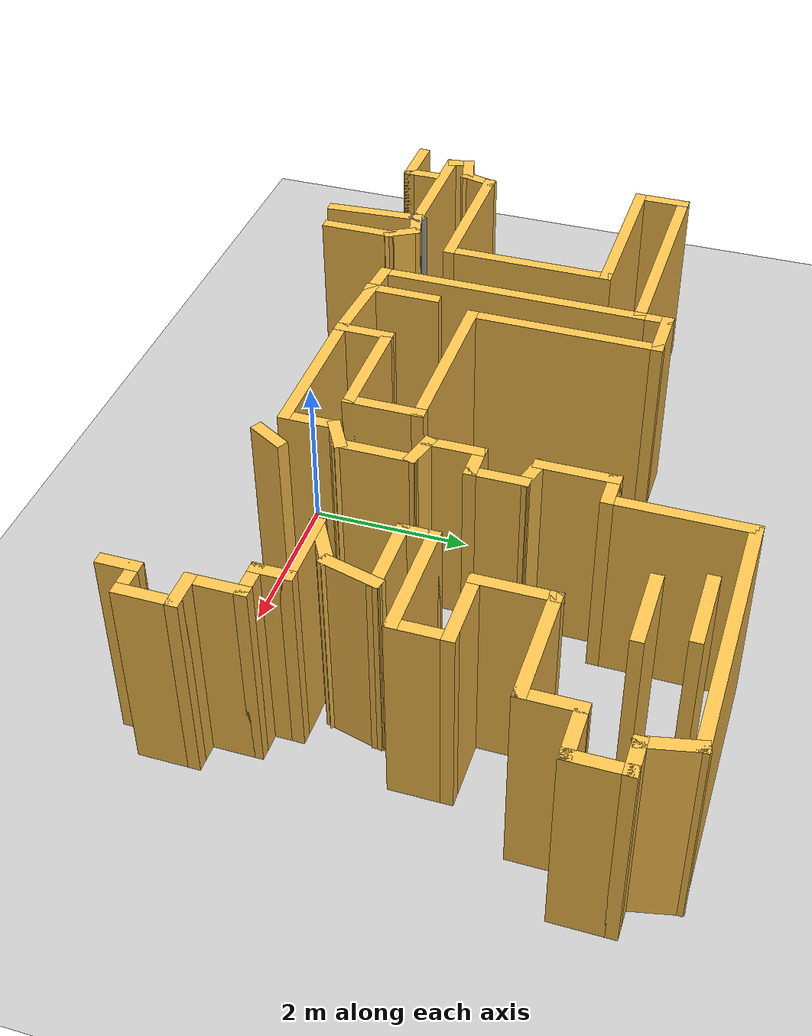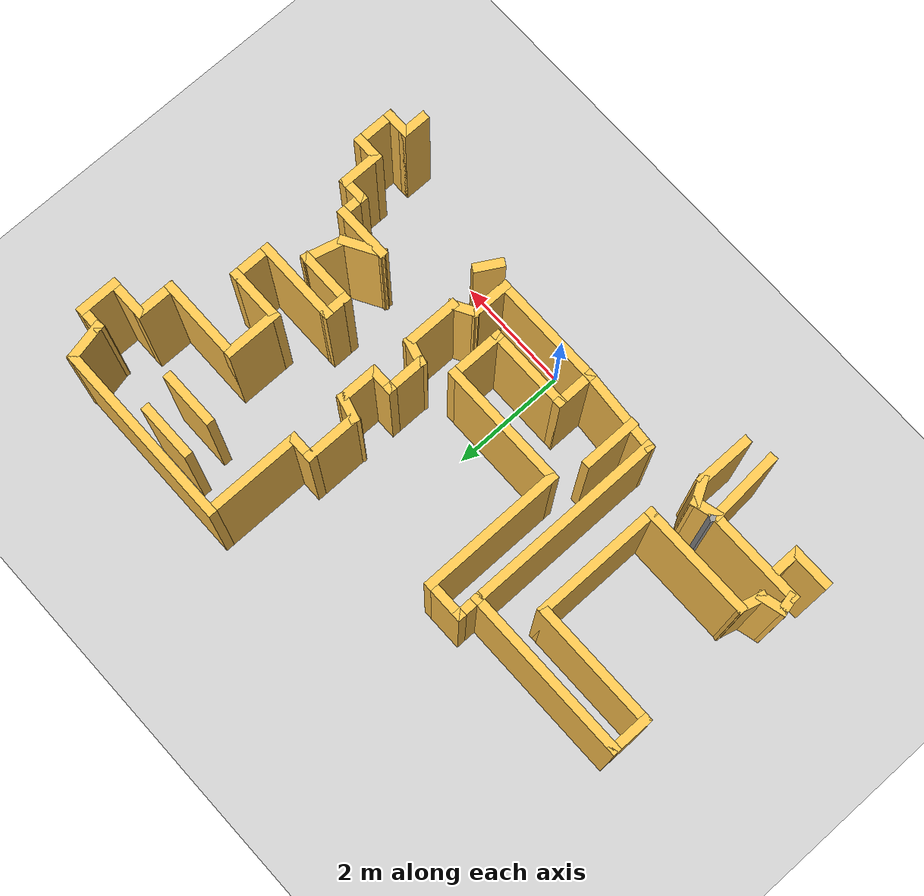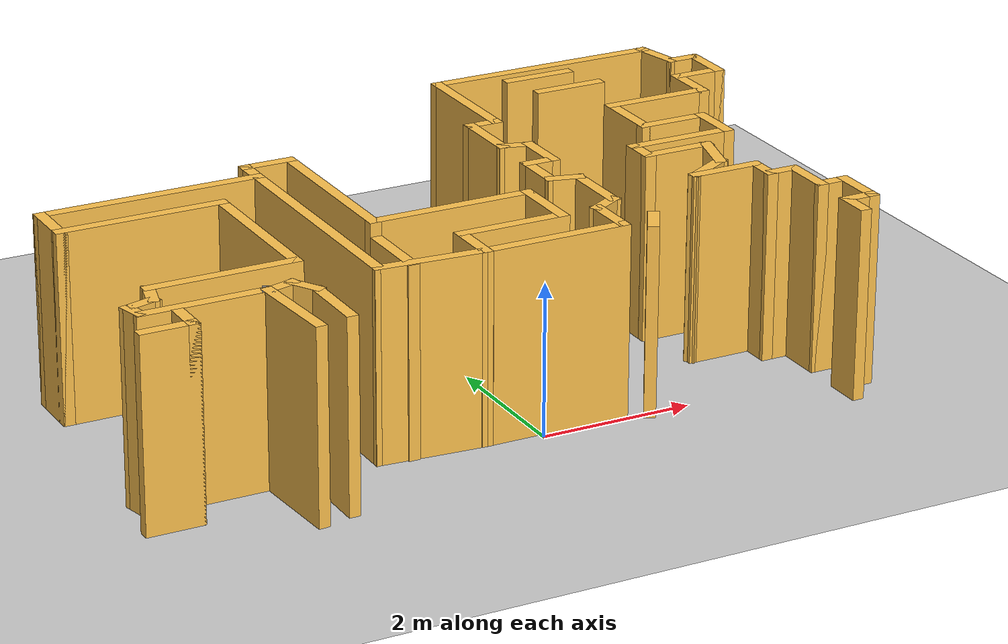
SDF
<sdf version="1.6">
 <world name="default">
  <model name="ground_plane">
   <static>1</static>
   <link name="link">
    <collision name="collision">
     <geometry><plane><normal>0 0 1</normal><size>100 100</size></plane></geometry>
     <surface>
      <contact><collide_bitmask>65535</collide_bitmask></contact>
      <friction><ode><mu>100</mu><mu2>50</mu2></ode></friction>
     </surface>
    </collision>
    <visual name="visual">
     <cast_shadows>0</cast_shadows>
     <geometry><plane><normal>0 0 1</normal><size>100 100</size></plane></geometry>
     <material>
      <script><uri>file://media/materials/scripts/gazebo.material</uri><name>Gazebo/Grey</name></script>
     </material>
    </visual>
   </link>
  </model>
  <model name="map_21">
   <pose>-0.097763 -0.060898 0 0 -0 0</pose>
   <link name="Wall_0">
    <collision name="Wall_0_Collision">
     <geometry><box><size>3.25 0.15 2.5</size></box></geometry>
     <pose>0 0 1.25 0 -0 0</pose>
    </collision>
    <visual name="Wall_0_Visual">
     <pose>0 0 1.25 0 -0 0</pose>
     <geometry><box><size>3.25 0.15 2.5</size></box></geometry>
     <material>
      <script><uri>file://media/materials/scripts/gazebo.material</uri><name>Gazebo/Grey</name></script>
      <ambient>1 0.764706 0.305882 1</ambient>
     </material>
     <meta><layer>0</layer></meta>
    </visual>
    <pose>3.10195 5.67023 0 0 -0 3.14159</pose>
   </link>
   <link name="Wall_1">
    <collision name="Wall_1_Collision">
     <geometry><box><size>1.75 0.15 2.5</size></box></geometry>
     <pose>0 0 1.25 0 -0 0</pose>
    </collision>
    <visual name="Wall_1_Visual">
     <pose>0 0 1.25 0 -0 0</pose>
     <geometry><box><size>1.75 0.15 2.5</size></box></geometry>
     <material>
      <script><uri>file://media/materials/scripts/gazebo.material</uri><name>Gazebo/Grey</name></script>
      <ambient>1 0.764706 0.305882 1</ambient>
     </material>
     <meta><layer>0</layer></meta>
    </visual>
    <pose>1.55195 4.87023 0 0 -0 -1.5708</pose>
   </link>
   <link name="Wall_10">
    <collision name="Wall_10_Collision">
     <geometry><box><size>0.5 0.15 2.5</size></box></geometry>
     <pose>0 0 1.25 0 -0 0</pose>
    </collision>
    <visual name="Wall_10_Visual">
     <pose>0 0 1.25 0 -0 0</pose>
     <geometry><box><size>0.5 0.15 2.5</size></box></geometry>
     <material>
      <script><uri>file://media/materials/scripts/gazebo.material</uri><name>Gazebo/Grey</name></script>
      <ambient>1 0.764706 0.305882 1</ambient>
     </material>
     <meta><layer>0</layer></meta>
    </visual>
    <pose>1.37654 0.901556 0 0 -0 -2.61799</pose>
   </link>
   <link name="Wall_11">
    <collision name="Wall_11_Collision">
     <geometry><box><size>0.75 0.15 2.5</size></box></geometry>
     <pose>0 0 1.25 0 -0 0</pose>
    </collision>
    <visual name="Wall_11_Visual">
     <pose>0 0 1.25 0 -0 0</pose>
     <geometry><box><size>0.75 0.15 2.5</size></box></geometry>
     <material>
      <script><uri>file://media/materials/scripts/gazebo.material</uri><name>Gazebo/Grey</name></script>
      <ambient>1 0.764706 0.305882 1</ambient>
     </material>
     <meta><layer>0</layer></meta>
    </visual>
    <pose>1.22499 0.514056 0 0 -0 -1.5708</pose>
   </link>
   <link name="Wall_12">
    <collision name="Wall_12_Collision">
     <geometry><box><size>2 0.15 2.5</size></box></geometry>
     <pose>0 0 1.25 0 -0 0</pose>
    </collision>
    <visual name="Wall_12_Visual">
     <pose>0 0 1.25 0 -0 0</pose>
     <geometry><box><size>2 0.15 2.5</size></box></geometry>
     <material>
      <script><uri>file://media/materials/scripts/gazebo.material</uri><name>Gazebo/Grey</name></script>
      <ambient>1 0.764706 0.305882 1</ambient>
     </material>
     <meta><layer>0</layer></meta>
    </visual>
    <pose>0.299987 0.214056 0 0 -0 3.14159</pose>
   </link>
   <link name="Wall_122">
    <collision name="Wall_122_Collision">
     <geometry><box><size>0.5 0.15 2.5</size></box></geometry>
     <pose>0 0 1.25 0 -0 0</pose>
    </collision>
    <visual name="Wall_122_Visual">
     <pose>0 0 1.25 0 -0 0</pose>
     <geometry><box><size>0.5 0.15 2.5</size></box></geometry>
     <material>
      <script><uri>file://media/materials/scripts/gazebo.material</uri><name>Gazebo/Grey</name></script>
      <ambient>1 0.764706 0.305882 1</ambient>
     </material>
     <meta><layer>0</layer></meta>
    </visual>
    <pose>4.04776 -0.496496 0 0 -0 1.5708</pose>
   </link>
   <link name="Wall_123">
    <collision name="Wall_123_Collision">
     <geometry><box><size>0.5 0.15 2.5</size></box></geometry>
     <pose>0 0 1.25 0 -0 0</pose>
    </collision>
    <visual name="Wall_123_Visual">
     <pose>0 0 1.25 0 -0 0</pose>
     <geometry><box><size>0.5 0.15 2.5</size></box></geometry>
     <material>
      <script><uri>file://media/materials/scripts/gazebo.material</uri><name>Gazebo/Grey</name></script>
      <ambient>1 0.764706 0.305882 1</ambient>
     </material>
     <meta><layer>0</layer></meta>
    </visual>
    <pose>4.22276 -0.321496 0 0 -0 0</pose>
   </link>
   <link name="Wall_124">
    <collision name="Wall_124_Collision">
     <geometry><box><size>0.75 0.15 2.5</size></box></geometry>
     <pose>0 0 1.25 0 -0 0</pose>
    </collision>
    <visual name="Wall_124_Visual">
     <pose>0 0 1.25 0 -0 0</pose>
     <geometry><box><size>0.75 0.15 2.5</size></box></geometry>
     <material>
      <script><uri>file://media/materials/scripts/gazebo.material</uri><name>Gazebo/Grey</name></script>
      <ambient>1 0.764706 0.305882 1</ambient>
     </material>
     <meta><layer>0</layer></meta>
    </visual>
    <pose>4.39776 -0.021496 0 0 -0 1.5708</pose>
   </link>
   <link name="Wall_125">
    <collision name="Wall_125_Collision">
     <geometry><box><size>0.5 0.15 2.5</size></box></geometry>
     <pose>0 0 1.25 0 -0 0</pose>
    </collision>
    <visual name="Wall_125_Visual">
     <pose>0 0 1.25 0 -0 0</pose>
     <geometry><box><size>0.5 0.15 2.5</size></box></geometry>
     <material>
      <script><uri>file://media/materials/scripts/gazebo.material</uri><name>Gazebo/Grey</name></script>
      <ambient>1 0.764706 0.305882 1</ambient>
     </material>
     <meta><layer>0</layer></meta>
    </visual>
    <pose>4.22276 0.278504 0 0 -0 3.14159</pose>
   </link>
   <link name="Wall_126">
    <collision name="Wall_126_Collision">
     <geometry><box><size>0.75 0.15 2.5</size></box></geometry>
     <pose>0 0 1.25 0 -0 0</pose>
    </collision>
    <visual name="Wall_126_Visual">
     <pose>0 0 1.25 0 -0 0</pose>
     <geometry><box><size>0.75 0.15 2.5</size></box></geometry>
     <material>
      <script><uri>file://media/materials/scripts/gazebo.material</uri><name>Gazebo/Grey</name></script>
      <ambient>1 0.764706 0.305882 1</ambient>
     </material>
     <meta><layer>0</layer></meta>
    </visual>
    <pose>4.04776 0.578504 0 0 -0 1.5708</pose>
   </link>
   <link name="Wall_127">
    <collision name="Wall_127_Collision">
     <geometry><box><size>0.5 0.15 2.5</size></box></geometry>
     <pose>0 0 1.25 0 -0 0</pose>
    </collision>
    <visual name="Wall_127_Visual">
     <pose>0 0 1.25 0 -0 0</pose>
     <geometry><box><size>0.5 0.15 2.5</size></box></geometry>
     <material>
      <script><uri>file://media/materials/scripts/gazebo.material</uri><name>Gazebo/Grey</name></script>
      <ambient>1 0.764706 0.305882 1</ambient>
     </material>
     <meta><layer>0</layer></meta>
    </visual>
    <pose>3.87276 0.878504 0 0 -0 3.14159</pose>
   </link>
   <link name="Wall_128">
    <collision name="Wall_128_Collision">
     <geometry><box><size>0.5 0.15 2.5</size></box></geometry>
     <pose>0 0 1.25 0 -0 0</pose>
    </collision>
    <visual name="Wall_128_Visual">
     <pose>0 0 1.25 0 -0 0</pose>
     <geometry><box><size>0.5 0.15 2.5</size></box></geometry>
     <material>
      <script><uri>file://media/materials/scripts/gazebo.material</uri><name>Gazebo/Grey</name></script>
      <ambient>1 0.764706 0.305882 1</ambient>
     </material>
     <meta><layer>0</layer></meta>
    </visual>
    <pose>3.69776 1.0535 0 0 -0 1.5708</pose>
   </link>
   <link name="Wall_129">
    <collision name="Wall_129_Collision">
     <geometry><box><size>1 0.15 2.5</size></box></geometry>
     <pose>0 0 1.25 0 -0 0</pose>
    </collision>
    <visual name="Wall_129_Visual">
     <pose>0 0 1.25 0 -0 0</pose>
     <geometry><box><size>1 0.15 2.5</size></box></geometry>
     <material>
      <script><uri>file://media/materials/scripts/gazebo.material</uri><name>Gazebo/Grey</name></script>
      <ambient>1 0.764706 0.305882 1</ambient>
     </material>
     <meta><layer>0</layer></meta>
    </visual>
    <pose>3.27276 1.2285 0 0 -0 3.14159</pose>
   </link>
   <link name="Wall_13">
    <collision name="Wall_13_Collision">
     <geometry><box><size>0.75 0.15 2.5</size></box></geometry>
     <pose>0 0 1.25 0 -0 0</pose>
    </collision>
    <visual name="Wall_13_Visual">
     <pose>0 0 1.25 0 -0 0</pose>
     <geometry><box><size>0.75 0.15 2.5</size></box></geometry>
     <material>
      <script><uri>file://media/materials/scripts/gazebo.material</uri><name>Gazebo/Grey</name></script>
      <ambient>1 0.764706 0.305882 1</ambient>
     </material>
     <meta><layer>0</layer></meta>
    </visual>
    <pose>-0.625014 0.514056 0 0 -0 1.5708</pose>
   </link>
   <link name="Wall_130">
    <collision name="Wall_130_Collision">
     <geometry><box><size>0.75 0.15 2.5</size></box></geometry>
     <pose>0 0 1.25 0 -0 0</pose>
    </collision>
    <visual name="Wall_130_Visual">
     <pose>0 0 1.25 0 -0 0</pose>
     <geometry><box><size>0.75 0.15 2.5</size></box></geometry>
     <material>
      <script><uri>file://media/materials/scripts/gazebo.material</uri><name>Gazebo/Grey</name></script>
      <ambient>1 0.764706 0.305882 1</ambient>
     </material>
     <meta><layer>0</layer></meta>
    </visual>
    <pose>3.10757 1.3785 0 0 -0 0.523599</pose>
   </link>
   <link name="Wall_131">
    <collision name="Wall_131_Collision">
     <geometry><box><size>0.75 0.15 2.5</size></box></geometry>
     <pose>0 0 1.25 0 -0 0</pose>
    </collision>
    <visual name="Wall_131_Visual">
     <pose>0 0 1.25 0 -0 0</pose>
     <geometry><box><size>0.75 0.15 2.5</size></box></geometry>
     <material>
      <script><uri>file://media/materials/scripts/gazebo.material</uri><name>Gazebo/Grey</name></script>
      <ambient>1 0.764706 0.305882 1</ambient>
     </material>
     <meta><layer>0</layer></meta>
    </visual>
    <pose>3.44502 1.81828 0 0 -0 1.309</pose>
   </link>
   <link name="Wall_132">
    <collision name="Wall_132_Collision">
     <geometry><box><size>1 0.15 2.5</size></box></geometry>
     <pose>0 0 1.25 0 -0 0</pose>
    </collision>
    <visual name="Wall_132_Visual">
     <pose>0 0 1.25 0 -0 0</pose>
     <geometry><box><size>1 0.15 2.5</size></box></geometry>
     <material>
      <script><uri>file://media/materials/scripts/gazebo.material</uri><name>Gazebo/Grey</name></script>
      <ambient>1 0.764706 0.305882 1</ambient>
     </material>
     <meta><layer>0</layer></meta>
    </visual>
    <pose>3.09767 2.10806 0 0 -0 3.14159</pose>
   </link>
   <link name="Wall_133">
    <collision name="Wall_133_Collision">
     <geometry><box><size>0.5 0.15 2.5</size></box></geometry>
     <pose>0 0 1.25 0 -0 0</pose>
    </collision>
    <visual name="Wall_133_Visual">
     <pose>0 0 1.25 0 -0 0</pose>
     <geometry><box><size>0.5 0.15 2.5</size></box></geometry>
     <material>
      <script><uri>file://media/materials/scripts/gazebo.material</uri><name>Gazebo/Grey</name></script>
      <ambient>1 0.764706 0.305882 1</ambient>
     </material>
     <meta><layer>0</layer></meta>
    </visual>
    <pose>2.67267 2.28306 0 0 -0 1.5708</pose>
   </link>
   <link name="Wall_134">
    <collision name="Wall_134_Collision">
     <geometry><box><size>1.5 0.15 2.5</size></box></geometry>
     <pose>0 0 1.25 0 -0 0</pose>
    </collision>
    <visual name="Wall_134_Visual">
     <pose>0 0 1.25 0 -0 0</pose>
     <geometry><box><size>1.5 0.15 2.5</size></box></geometry>
     <material>
      <script><uri>file://media/materials/scripts/gazebo.material</uri><name>Gazebo/Grey</name></script>
      <ambient>1 0.764706 0.305882 1</ambient>
     </material>
     <meta><layer>0</layer></meta>
    </visual>
    <pose>3.34767 2.45806 0 0 -0 0</pose>
   </link>
   <link name="Wall_135">
    <collision name="Wall_135_Collision">
     <geometry><box><size>0.75 0.15 2.5</size></box></geometry>
     <pose>0 0 1.25 0 -0 0</pose>
    </collision>
    <visual name="Wall_135_Visual">
     <pose>0 0 1.25 0 -0 0</pose>
     <geometry><box><size>0.75 0.15 2.5</size></box></geometry>
     <material>
      <script><uri>file://media/materials/scripts/gazebo.material</uri><name>Gazebo/Grey</name></script>
      <ambient>1 0.764706 0.305882 1</ambient>
     </material>
     <meta><layer>0</layer></meta>
    </visual>
    <pose>4.02267 2.75806 0 0 -0 1.5708</pose>
   </link>
   <link name="Wall_136">
    <collision name="Wall_136_Collision">
     <geometry><box><size>1 0.15 2.5</size></box></geometry>
     <pose>0 0 1.25 0 -0 0</pose>
    </collision>
    <visual name="Wall_136_Visual">
     <pose>0 0 1.25 0 -0 0</pose>
     <geometry><box><size>1 0.15 2.5</size></box></geometry>
     <material>
      <script><uri>file://media/materials/scripts/gazebo.material</uri><name>Gazebo/Grey</name></script>
      <ambient>1 0.764706 0.305882 1</ambient>
     </material>
     <meta><layer>0</layer></meta>
    </visual>
    <pose>3.59767 3.05806 0 0 -0 3.14159</pose>
   </link>
   <link name="Wall_137">
    <collision name="Wall_137_Collision">
     <geometry><box><size>1 0.15 2.5</size></box></geometry>
     <pose>0 0 1.25 0 -0 0</pose>
    </collision>
    <visual name="Wall_137_Visual">
     <pose>0 0 1.25 0 -0 0</pose>
     <geometry><box><size>1 0.15 2.5</size></box></geometry>
     <material>
      <script><uri>file://media/materials/scripts/gazebo.material</uri><name>Gazebo/Grey</name></script>
      <ambient>1 0.764706 0.305882 1</ambient>
     </material>
     <meta><layer>0</layer></meta>
    </visual>
    <pose>3.17267 3.48306 0 0 -0 1.5708</pose>
   </link>
   <link name="Wall_138">
    <collision name="Wall_138_Collision">
     <geometry><box><size>1.5 0.15 2.5</size></box></geometry>
     <pose>0 0 1.25 0 -0 0</pose>
    </collision>
    <visual name="Wall_138_Visual">
     <pose>0 0 1.25 0 -0 0</pose>
     <geometry><box><size>1.5 0.15 2.5</size></box></geometry>
     <material>
      <script><uri>file://media/materials/scripts/gazebo.material</uri><name>Gazebo/Grey</name></script>
      <ambient>1 0.764706 0.305882 1</ambient>
     </material>
     <meta><layer>0</layer></meta>
    </visual>
    <pose>3.84767 3.90806 0 0 -0 0</pose>
   </link>
   <link name="Wall_139">
    <collision name="Wall_139_Collision">
     <geometry><box><size>0.75 0.15 2.5</size></box></geometry>
     <pose>0 0 1.25 0 -0 0</pose>
    </collision>
    <visual name="Wall_139_Visual">
     <pose>0 0 1.25 0 -0 0</pose>
     <geometry><box><size>0.75 0.15 2.5</size></box></geometry>
     <material>
      <script><uri>file://media/materials/scripts/gazebo.material</uri><name>Gazebo/Grey</name></script>
      <ambient>1 0.764706 0.305882 1</ambient>
     </material>
     <meta><layer>0</layer></meta>
    </visual>
    <pose>4.52267 4.20806 0 0 -0 1.5708</pose>
   </link>
   <link name="Wall_14">
    <collision name="Wall_14_Collision">
     <geometry><box><size>1.5 0.15 2.5</size></box></geometry>
     <pose>0 0 1.25 0 -0 0</pose>
    </collision>
    <visual name="Wall_14_Visual">
     <pose>0 0 1.25 0 -0 0</pose>
     <geometry><box><size>1.5 0.15 2.5</size></box></geometry>
     <material>
      <script><uri>file://media/materials/scripts/gazebo.material</uri><name>Gazebo/Grey</name></script>
      <ambient>1 0.764706 0.305882 1</ambient>
     </material>
     <meta><layer>0</layer></meta>
    </visual>
    <pose>0.049987 0.814056 0 0 -0 0</pose>
   </link>
   <link name="Wall_140">
    <collision name="Wall_140_Collision">
     <geometry><box><size>0.75 0.15 2.5</size></box></geometry>
     <pose>0 0 1.25 0 -0 0</pose>
    </collision>
    <visual name="Wall_140_Visual">
     <pose>0 0 1.25 0 -0 0</pose>
     <geometry><box><size>0.75 0.15 2.5</size></box></geometry>
     <material>
      <script><uri>file://media/materials/scripts/gazebo.material</uri><name>Gazebo/Grey</name></script>
      <ambient>1 0.764706 0.305882 1</ambient>
     </material>
     <meta><layer>0</layer></meta>
    </visual>
    <pose>4.82267 4.50806 0 0 -0 0</pose>
   </link>
   <link name="Wall_141">
    <collision name="Wall_141_Collision">
     <geometry><box><size>0.75 0.15 2.5</size></box></geometry>
     <pose>0 0 1.25 0 -0 0</pose>
    </collision>
    <visual name="Wall_141_Visual">
     <pose>0 0 1.25 0 -0 0</pose>
     <geometry><box><size>0.75 0.15 2.5</size></box></geometry>
     <material>
      <script><uri>file://media/materials/scripts/gazebo.material</uri><name>Gazebo/Grey</name></script>
      <ambient>1 0.764706 0.305882 1</ambient>
     </material>
     <meta><layer>0</layer></meta>
    </visual>
    <pose>5.12267 4.80806 0 0 -0 1.5708</pose>
   </link>
   <link name="Wall_142">
    <collision name="Wall_142_Collision">
     <geometry><box><size>0.5 0.15 2.5</size></box></geometry>
     <pose>0 0 1.25 0 -0 0</pose>
    </collision>
    <visual name="Wall_142_Visual">
     <pose>0 0 1.25 0 -0 0</pose>
     <geometry><box><size>0.5 0.15 2.5</size></box></geometry>
     <material>
      <script><uri>file://media/materials/scripts/gazebo.material</uri><name>Gazebo/Grey</name></script>
      <ambient>1 0.764706 0.305882 1</ambient>
     </material>
     <meta><layer>0</layer></meta>
    </visual>
    <pose>4.94767 5.10806 0 0 -0 3.14159</pose>
   </link>
   <link name="Wall_143">
    <collision name="Wall_143_Collision">
     <geometry><box><size>0.724985 0.15 2.5</size></box></geometry>
     <pose>0 0 1.25 0 -0 0</pose>
    </collision>
    <visual name="Wall_143_Visual">
     <pose>0 0 1.25 0 -0 0</pose>
     <geometry><box><size>0.724985 0.15 2.5</size></box></geometry>
     <material>
      <script><uri>file://media/materials/scripts/gazebo.material</uri><name>Gazebo/Grey</name></script>
      <ambient>1 0.764706 0.305882 1</ambient>
     </material>
     <meta><layer>0</layer></meta>
    </visual>
    <pose>4.71231 5.38914 0 0 -0 1.78232</pose>
   </link>
   <link name="Wall_145">
    <collision name="Wall_145_Collision">
     <geometry><box><size>1 0.15 2.5</size></box></geometry>
     <pose>0 0 1.25 0 -0 0</pose>
    </collision>
    <visual name="Wall_145_Visual">
     <pose>0 0 1.25 0 -0 0</pose>
     <geometry><box><size>1 0.15 2.5</size></box></geometry>
     <material>
      <script><uri>file://media/materials/scripts/gazebo.material</uri><name>Gazebo/Grey</name></script>
      <ambient>1 0.764706 0.305882 1</ambient>
     </material>
     <meta><layer>0</layer></meta>
    </visual>
    <pose>2.87954 5.36953 0 0 -0 0</pose>
   </link>
   <link name="Wall_147">
    <collision name="Wall_147_Collision">
     <geometry><box><size>1 0.15 2.5</size></box></geometry>
     <pose>0 0 1.25 0 -0 0</pose>
    </collision>
    <visual name="Wall_147_Visual">
     <pose>0 0 1.25 0 -0 0</pose>
     <geometry><box><size>1 0.15 2.5</size></box></geometry>
     <material>
      <script><uri>file://media/materials/scripts/gazebo.material</uri><name>Gazebo/Grey</name></script>
      <ambient>1 0.764706 0.305882 1</ambient>
     </material>
     <meta><layer>0</layer></meta>
    </visual>
    <pose>3.04145 4.8144 0 0 -0 0</pose>
   </link>
   <link name="Wall_15">
    <collision name="Wall_15_Collision">
     <geometry><box><size>1 0.15 2.5</size></box></geometry>
     <pose>0 0 1.25 0 -0 0</pose>
    </collision>
    <visual name="Wall_15_Visual">
     <pose>0 0 1.25 0 -0 0</pose>
     <geometry><box><size>1 0.15 2.5</size></box></geometry>
     <material>
      <script><uri>file://media/materials/scripts/gazebo.material</uri><name>Gazebo/Grey</name></script>
      <ambient>1 0.764706 0.305882 1</ambient>
     </material>
     <meta><layer>0</layer></meta>
    </visual>
    <pose>0.724986 1.23906 0 0 -0 1.5708</pose>
   </link>
   <link name="Wall_150">
    <collision name="Wall_150_Collision">
     <geometry><box><size>0.5 0.15 2.5</size></box></geometry>
     <pose>0 0 1.25 0 -0 0</pose>
    </collision>
    <visual name="Wall_150_Visual">
     <pose>0 0 1.25 0 -0 0</pose>
     <geometry><box><size>0.5 0.15 2.5</size></box></geometry>
     <material>
      <script><uri>file://media/materials/scripts/gazebo.material</uri><name>Gazebo/Grey</name></script>
      <ambient>1 0.764706 0.305882 1</ambient>
     </material>
     <meta><layer>0</layer></meta>
    </visual>
    <pose>1.62686 0.175504 0 0 -0 -2.0944</pose>
   </link>
   <link name="Wall_155">
    <collision name="Wall_155_Collision">
     <geometry><box><size>3.5 0.15 2.5</size></box></geometry>
     <pose>0 0 1.25 0 -0 0</pose>
    </collision>
    <visual name="Wall_155_Visual">
     <pose>0 0 1.25 0 -0 0</pose>
     <geometry><box><size>3.5 0.15 2.5</size></box></geometry>
     <material>
      <script><uri>file://media/materials/scripts/gazebo.material</uri><name>Gazebo/Grey</name></script>
      <ambient>1 0.764706 0.305882 1</ambient>
     </material>
     <meta><layer>0</layer></meta>
    </visual>
    <pose>-1.97501 1.98906 0 0 -0 -1.5708</pose>
   </link>
   <link name="Wall_156">
    <collision name="Wall_156_Collision">
     <geometry><box><size>1.5037 0.15 2.5</size></box></geometry>
     <pose>0 0 1.25 0 -0 0</pose>
    </collision>
    <visual name="Wall_156_Visual">
     <pose>0 0 1.25 0 -0 0</pose>
     <geometry><box><size>1.5037 0.15 2.5</size></box></geometry>
     <material>
      <script><uri>file://media/materials/scripts/gazebo.material</uri><name>Gazebo/Grey</name></script>
      <ambient>1 0.764706 0.305882 1</ambient>
     </material>
     <meta><layer>0</layer></meta>
    </visual>
    <pose>-1.30001 0.264056 0 0 -0 -0.073939</pose>
   </link>
   <link name="Wall_158">
    <collision name="Wall_158_Collision">
     <geometry><box><size>1 0.15 2.5</size></box></geometry>
     <pose>0 0 1.25 0 -0 0</pose>
    </collision>
    <visual name="Wall_158_Visual">
     <pose>0 0 1.25 0 -0 0</pose>
     <geometry><box><size>1 0.15 2.5</size></box></geometry>
     <material>
      <script><uri>file://media/materials/scripts/gazebo.material</uri><name>Gazebo/Grey</name></script>
      <ambient>1 0.764706 0.305882 1</ambient>
     </material>
     <meta><layer>0</layer></meta>
    </visual>
    <pose>-1.57019 0.688499 0 0 -0 -1.5708</pose>
   </link>
   <link name="Wall_16">
    <collision name="Wall_16_Collision">
     <geometry><box><size>2.25 0.15 2.5</size></box></geometry>
     <pose>0 0 1.25 0 -0 0</pose>
    </collision>
    <visual name="Wall_16_Visual">
     <pose>0 0 1.25 0 -0 0</pose>
     <geometry><box><size>2.25 0.15 2.5</size></box></geometry>
     <material>
      <script><uri>file://media/materials/scripts/gazebo.material</uri><name>Gazebo/Grey</name></script>
      <ambient>1 0.764706 0.305882 1</ambient>
     </material>
     <meta><layer>0</layer></meta>
    </visual>
    <pose>-0.325013 1.66406 0 0 -0 3.14159</pose>
   </link>
   <link name="Wall_17">
    <collision name="Wall_17_Collision">
     <geometry><box><size>2.5 0.15 2.5</size></box></geometry>
     <pose>0 0 1.25 0 -0 0</pose>
    </collision>
    <visual name="Wall_17_Visual">
     <pose>0 0 1.25 0 -0 0</pose>
     <geometry><box><size>2.5 0.15 2.5</size></box></geometry>
     <material>
      <script><uri>file://media/materials/scripts/gazebo.material</uri><name>Gazebo/Grey</name></script>
      <ambient>1 0.764706 0.305882 1</ambient>
     </material>
     <meta><layer>0</layer></meta>
    </visual>
    <pose>-1.37501 2.83906 0 0 -0 1.5708</pose>
   </link>
   <link name="Wall_18">
    <collision name="Wall_18_Collision">
     <geometry><box><size>0.75 0.15 2.5</size></box></geometry>
     <pose>0 0 1.25 0 -0 0</pose>
    </collision>
    <visual name="Wall_18_Visual">
     <pose>0 0 1.25 0 -0 0</pose>
     <geometry><box><size>0.75 0.15 2.5</size></box></geometry>
     <material>
      <script><uri>file://media/materials/scripts/gazebo.material</uri><name>Gazebo/Grey</name></script>
      <ambient>1 0.764706 0.305882 1</ambient>
     </material>
     <meta><layer>0</layer></meta>
    </visual>
    <pose>-1.67501 4.01406 0 0 -0 3.14159</pose>
   </link>
   <link name="Wall_19">
    <collision name="Wall_19_Collision">
     <geometry><box><size>0.5 0.15 2.5</size></box></geometry>
     <pose>0 0 1.25 0 -0 0</pose>
    </collision>
    <visual name="Wall_19_Visual">
     <pose>0 0 1.25 0 -0 0</pose>
     <geometry><box><size>0.5 0.15 2.5</size></box></geometry>
     <material>
      <script><uri>file://media/materials/scripts/gazebo.material</uri><name>Gazebo/Grey</name></script>
      <ambient>1 0.764706 0.305882 1</ambient>
     </material>
     <meta><layer>0</layer></meta>
    </visual>
    <pose>-1.97501 3.83906 0 0 -0 -1.5708</pose>
   </link>
   <link name="Wall_2">
    <collision name="Wall_2_Collision">
     <geometry><box><size>0.5 0.15 2.5</size></box></geometry>
     <pose>0 0 1.25 0 -0 0</pose>
    </collision>
    <visual name="Wall_2_Visual">
     <pose>0 0 1.25 0 -0 0</pose>
     <geometry><box><size>0.5 0.15 2.5</size></box></geometry>
     <material>
      <script><uri>file://media/materials/scripts/gazebo.material</uri><name>Gazebo/Grey</name></script>
      <ambient>1 0.764706 0.305882 1</ambient>
     </material>
     <meta><layer>0</layer></meta>
    </visual>
    <pose>1.37695 4.07023 0 0 -0 3.14159</pose>
   </link>
   <link name="Wall_20">
    <collision name="Wall_20_Collision">
     <geometry><box><size>3 0.15 2.5</size></box></geometry>
     <pose>0 0 1.25 0 -0 0</pose>
    </collision>
    <visual name="Wall_20_Visual">
     <pose>0 0 1.25 0 -0 0</pose>
     <geometry><box><size>3 0.15 2.5</size></box></geometry>
     <material>
      <script><uri>file://media/materials/scripts/gazebo.material</uri><name>Gazebo/Grey</name></script>
      <ambient>1 0.764706 0.305882 1</ambient>
     </material>
     <meta><layer>0</layer></meta>
    </visual>
    <pose>-3.40001 3.66406 0 0 -0 3.14159</pose>
   </link>
   <link name="Wall_21">
    <collision name="Wall_21_Collision">
     <geometry><box><size>0.75 0.15 2.5</size></box></geometry>
     <pose>0 0 1.25 0 -0 0</pose>
    </collision>
    <visual name="Wall_21_Visual">
     <pose>0 0 1.25 0 -0 0</pose>
     <geometry><box><size>0.75 0.15 2.5</size></box></geometry>
     <material>
      <script><uri>file://media/materials/scripts/gazebo.material</uri><name>Gazebo/Grey</name></script>
      <ambient>1 0.764706 0.305882 1</ambient>
     </material>
     <meta><layer>0</layer></meta>
    </visual>
    <pose>-4.82501 3.36406 0 0 -0 -1.5708</pose>
   </link>
   <link name="Wall_22">
    <collision name="Wall_22_Collision">
     <geometry><box><size>2.25 0.15 2.5</size></box></geometry>
     <pose>0 0 1.25 0 -0 0</pose>
    </collision>
    <visual name="Wall_22_Visual">
     <pose>0 0 1.25 0 -0 0</pose>
     <geometry><box><size>2.25 0.15 2.5</size></box></geometry>
     <material>
      <script><uri>file://media/materials/scripts/gazebo.material</uri><name>Gazebo/Grey</name></script>
      <ambient>1 0.764706 0.305882 1</ambient>
     </material>
     <meta><layer>0</layer></meta>
    </visual>
    <pose>-3.77501 3.06406 0 0 -0 0</pose>
   </link>
   <link name="Wall_23">
    <collision name="Wall_23_Collision">
     <geometry><box><size>2.25 0.15 2.5</size></box></geometry>
     <pose>0 0 1.25 0 -0 0</pose>
    </collision>
    <visual name="Wall_23_Visual">
     <pose>0 0 1.25 0 -0 0</pose>
     <geometry><box><size>2.25 0.15 2.5</size></box></geometry>
     <material>
      <script><uri>file://media/materials/scripts/gazebo.material</uri><name>Gazebo/Grey</name></script>
      <ambient>1 0.764706 0.305882 1</ambient>
     </material>
     <meta><layer>0</layer></meta>
    </visual>
    <pose>-2.72501 2.01406 0 0 -0 -1.5708</pose>
   </link>
   <link name="Wall_24">
    <collision name="Wall_24_Collision">
     <geometry><box><size>2 0.15 2.5</size></box></geometry>
     <pose>0 0 1.25 0 -0 0</pose>
    </collision>
    <visual name="Wall_24_Visual">
     <pose>0 0 1.25 0 -0 0</pose>
     <geometry><box><size>2 0.15 2.5</size></box></geometry>
     <material>
      <script><uri>file://media/materials/scripts/gazebo.material</uri><name>Gazebo/Grey</name></script>
      <ambient>1 0.764706 0.305882 1</ambient>
     </material>
     <meta><layer>0</layer></meta>
    </visual>
    <pose>-3.65001 0.964056 0 0 -0 3.14159</pose>
   </link>
   <link name="Wall_29">
    <collision name="Wall_29_Collision">
     <geometry><box><size>0.5 0.15 2.5</size></box></geometry>
     <pose>0 0 1.25 0 -0 0</pose>
    </collision>
    <visual name="Wall_29_Visual">
     <pose>0 0 1.25 0 -0 0</pose>
     <geometry><box><size>0.5 0.15 2.5</size></box></geometry>
     <material>
      <script><uri>file://media/materials/scripts/gazebo.material</uri><name>Gazebo/Grey</name></script>
      <ambient>1 0.764706 0.305882 1</ambient>
     </material>
     <meta><layer>0</layer></meta>
    </visual>
    <pose>-4.62031 0.795019 0 0 -0 -1.8326</pose>
   </link>
   <link name="Wall_3">
    <collision name="Wall_3_Collision">
     <geometry><box><size>1 0.15 2.5</size></box></geometry>
     <pose>0 0 1.25 0 -0 0</pose>
    </collision>
    <visual name="Wall_3_Visual">
     <pose>0 0 1.25 0 -0 0</pose>
     <geometry><box><size>1 0.15 2.5</size></box></geometry>
     <material>
      <script><uri>file://media/materials/scripts/gazebo.material</uri><name>Gazebo/Grey</name></script>
      <ambient>1 0.764706 0.305882 1</ambient>
     </material>
     <meta><layer>0</layer></meta>
    </visual>
    <pose>1.20195 3.64523 0 0 -0 -1.5708</pose>
   </link>
   <link name="Wall_30">
    <collision name="Wall_30_Collision">
     <geometry><box><size>0.5 0.15 2.5</size></box></geometry>
     <pose>0 0 1.25 0 -0 0</pose>
    </collision>
    <visual name="Wall_30_Visual">
     <pose>0 0 1.25 0 -0 0</pose>
     <geometry><box><size>0.5 0.15 2.5</size></box></geometry>
     <material>
      <script><uri>file://media/materials/scripts/gazebo.material</uri><name>Gazebo/Grey</name></script>
      <ambient>1 0.764706 0.305882 1</ambient>
     </material>
     <meta><layer>0</layer></meta>
    </visual>
    <pose>-4.83464 0.580688 0 0 -0 -2.87979</pose>
   </link>
   <link name="Wall_35">
    <collision name="Wall_35_Collision">
     <geometry><box><size>0.366223 0.15 2.5</size></box></geometry>
     <pose>0 0 1.25 0 -0 0</pose>
    </collision>
    <visual name="Wall_35_Visual">
     <pose>0 0 1.25 0 -0 0</pose>
     <geometry><box><size>0.366223 0.15 2.5</size></box></geometry>
     <material>
      <script><uri>file://media/materials/scripts/gazebo.material</uri><name>Gazebo/Grey</name></script>
      <ambient>1 0.764706 0.305882 1</ambient>
     </material>
     <meta><layer>0</layer></meta>
    </visual>
    <pose>-4.98054 0.429787 0 0 -0 -1.35518</pose>
   </link>
   <link name="Wall_36">
    <collision name="Wall_36_Collision">
     <geometry><box><size>1.75 0.15 2.5</size></box></geometry>
     <pose>0 0 1.25 0 -0 0</pose>
    </collision>
    <visual name="Wall_36_Visual">
     <pose>0 0 1.25 0 -0 0</pose>
     <geometry><box><size>1.75 0.15 2.5</size></box></geometry>
     <material>
      <script><uri>file://media/materials/scripts/gazebo.material</uri><name>Gazebo/Grey</name></script>
      <ambient>1 0.764706 0.305882 1</ambient>
     </material>
     <meta><layer>0</layer></meta>
    </visual>
    <pose>-4.15741 0.301048 0 0 -0 0</pose>
   </link>
   <link name="Wall_37">
    <collision name="Wall_37_Collision">
     <geometry><box><size>0.196855 0.15 2.5</size></box></geometry>
     <pose>0 0 1.25 0 -0 0</pose>
    </collision>
    <visual name="Wall_37_Visual">
     <pose>0 0 1.25 0 -0 0</pose>
     <geometry><box><size>0.196855 0.15 2.5</size></box></geometry>
     <material>
      <script><uri>file://media/materials/scripts/gazebo.material</uri><name>Gazebo/Grey</name></script>
      <ambient>1 1 1 1</ambient>
     </material>
     <meta><layer>0</layer></meta>
    </visual>
    <pose>-3.3676 0.303083 0 0 -0 -2.02077</pose>
   </link>
   <link name="Wall_38">
    <collision name="Wall_38_Collision">
     <geometry><box><size>0.5 0.15 2.5</size></box></geometry>
     <pose>0 0 1.25 0 -0 0</pose>
    </collision>
    <visual name="Wall_38_Visual">
     <pose>0 0 1.25 0 -0 0</pose>
     <geometry><box><size>0.5 0.15 2.5</size></box></geometry>
     <material>
      <script><uri>file://media/materials/scripts/gazebo.material</uri><name>Gazebo/Grey</name></script>
      <ambient>1 0.764706 0.305882 1</ambient>
     </material>
     <meta><layer>0</layer></meta>
    </visual>
    <pose>-3.20876 0.327281 0 0 -0 0.261799</pose>
   </link>
   <link name="Wall_39">
    <collision name="Wall_39_Collision">
     <geometry><box><size>0.5 0.15 2.5</size></box></geometry>
     <pose>0 0 1.25 0 -0 0</pose>
    </collision>
    <visual name="Wall_39_Visual">
     <pose>0 0 1.25 0 -0 0</pose>
     <geometry><box><size>0.5 0.15 2.5</size></box></geometry>
     <material>
      <script><uri>file://media/materials/scripts/gazebo.material</uri><name>Gazebo/Grey</name></script>
      <ambient>1 0.764706 0.305882 1</ambient>
     </material>
     <meta><layer>0</layer></meta>
    </visual>
    <pose>-2.95222 0.22102 0 0 -0 -1.0472</pose>
   </link>
   <link name="Wall_4">
    <collision name="Wall_4_Collision">
     <geometry><box><size>0.5 0.15 2.5</size></box></geometry>
     <pose>0 0 1.25 0 -0 0</pose>
    </collision>
    <visual name="Wall_4_Visual">
     <pose>0 0 1.25 0 -0 0</pose>
     <geometry><box><size>0.5 0.15 2.5</size></box></geometry>
     <material>
      <script><uri>file://media/materials/scripts/gazebo.material</uri><name>Gazebo/Grey</name></script>
      <ambient>1 0.764706 0.305882 1</ambient>
     </material>
     <meta><layer>0</layer></meta>
    </visual>
    <pose>1.37098 3.17494 0 0 -0 -0.261799</pose>
   </link>
   <link name="Wall_40">
    <collision name="Wall_40_Collision">
     <geometry><box><size>1 0.15 2.5</size></box></geometry>
     <pose>0 0 1.25 0 -0 0</pose>
    </collision>
    <visual name="Wall_40_Visual">
     <pose>0 0 1.25 0 -0 0</pose>
     <geometry><box><size>1 0.15 2.5</size></box></geometry>
     <material>
      <script><uri>file://media/materials/scripts/gazebo.material</uri><name>Gazebo/Grey</name></script>
      <ambient>1 0.764706 0.305882 1</ambient>
     </material>
     <meta><layer>0</layer></meta>
    </visual>
    <pose>-2.86472 -0.355535 0 0 -0 -1.5708</pose>
   </link>
   <link name="Wall_49">
    <collision name="Wall_49_Collision">
     <geometry><box><size>0.5 0.15 2.5</size></box></geometry>
     <pose>0 0 1.25 0 -0 0</pose>
    </collision>
    <visual name="Wall_49_Visual">
     <pose>0 0 1.25 0 -0 0</pose>
     <geometry><box><size>0.5 0.15 2.5</size></box></geometry>
     <material>
      <script><uri>file://media/materials/scripts/gazebo.material</uri><name>Gazebo/Grey</name></script>
      <ambient>1 0.764706 0.305882 1</ambient>
     </material>
     <meta><layer>0</layer></meta>
    </visual>
    <pose>-4.5309 -0.009856 0 0 -0 -1.5708</pose>
   </link>
   <link name="Wall_5">
    <collision name="Wall_5_Collision">
     <geometry><box><size>0.75 0.15 2.5</size></box></geometry>
     <pose>0 0 1.25 0 -0 0</pose>
    </collision>
    <visual name="Wall_5_Visual">
     <pose>0 0 1.25 0 -0 0</pose>
     <geometry><box><size>0.75 0.15 2.5</size></box></geometry>
     <material>
      <script><uri>file://media/materials/scripts/gazebo.material</uri><name>Gazebo/Grey</name></script>
      <ambient>1 0.764706 0.305882 1</ambient>
     </material>
     <meta><layer>0</layer></meta>
    </visual>
    <pose>1.54002 2.82964 0 0 -0 -1.5708</pose>
   </link>
   <link name="Wall_50">
    <collision name="Wall_50_Collision">
     <geometry><box><size>0.75 0.15 2.5</size></box></geometry>
     <pose>0 0 1.25 0 -0 0</pose>
    </collision>
    <visual name="Wall_50_Visual">
     <pose>0 0 1.25 0 -0 0</pose>
     <geometry><box><size>0.75 0.15 2.5</size></box></geometry>
     <material>
      <script><uri>file://media/materials/scripts/gazebo.material</uri><name>Gazebo/Grey</name></script>
      <ambient>1 0.764706 0.305882 1</ambient>
     </material>
     <meta><layer>0</layer></meta>
    </visual>
    <pose>-4.8309 -0.184856 0 0 -0 3.14159</pose>
   </link>
   <link name="Wall_6">
    <collision name="Wall_6_Collision">
     <geometry><box><size>0.5 0.15 2.5</size></box></geometry>
     <pose>0 0 1.25 0 -0 0</pose>
    </collision>
    <visual name="Wall_6_Visual">
     <pose>0 0 1.25 0 -0 0</pose>
     <geometry><box><size>0.5 0.15 2.5</size></box></geometry>
     <material>
      <script><uri>file://media/materials/scripts/gazebo.material</uri><name>Gazebo/Grey</name></script>
      <ambient>1 0.764706 0.305882 1</ambient>
     </material>
     <meta><layer>0</layer></meta>
    </visual>
    <pose>1.36502 2.52964 0 0 -0 3.14159</pose>
   </link>
   <link name="Wall_63">
    <collision name="Wall_63_Collision">
     <geometry><box><size>1.31193 0.15 2.5</size></box></geometry>
     <pose>0 0 1.25 0 -0 0</pose>
    </collision>
    <visual name="Wall_63_Visual">
     <pose>0 0 1.25 0 -0 0</pose>
     <geometry><box><size>1.31193 0.15 2.5</size></box></geometry>
     <material>
      <script><uri>file://media/materials/scripts/gazebo.material</uri><name>Gazebo/Grey</name></script>
      <ambient>1 0.764706 0.305882 1</ambient>
     </material>
     <meta><layer>0</layer></meta>
    </visual>
    <pose>-3.33922 -0.297695 0 0 -0 1.63724</pose>
   </link>
   <link name="Wall_7">
    <collision name="Wall_7_Collision">
     <geometry><box><size>0.75 0.15 2.5</size></box></geometry>
     <pose>0 0 1.25 0 -0 0</pose>
    </collision>
    <visual name="Wall_7_Visual">
     <pose>0 0 1.25 0 -0 0</pose>
     <geometry><box><size>0.75 0.15 2.5</size></box></geometry>
     <material>
      <script><uri>file://media/materials/scripts/gazebo.material</uri><name>Gazebo/Grey</name></script>
      <ambient>1 0.764706 0.305882 1</ambient>
     </material>
     <meta><layer>0</layer></meta>
    </visual>
    <pose>1.19002 2.22964 0 0 -0 -1.5708</pose>
   </link>
   <link name="Wall_8">
    <collision name="Wall_8_Collision">
     <geometry><box><size>0.5 0.15 2.5</size></box></geometry>
     <pose>0 0 1.25 0 -0 0</pose>
    </collision>
    <visual name="Wall_8_Visual">
     <pose>0 0 1.25 0 -0 0</pose>
     <geometry><box><size>0.5 0.15 2.5</size></box></geometry>
     <material>
      <script><uri>file://media/materials/scripts/gazebo.material</uri><name>Gazebo/Grey</name></script>
      <ambient>1 0.764706 0.305882 1</ambient>
     </material>
     <meta><layer>0</layer></meta>
    </visual>
    <pose>1.35906 1.88435 0 0 -0 -0.261799</pose>
   </link>
   <link name="Wall_9">
    <collision name="Wall_9_Collision">
     <geometry><box><size>1 0.15 2.5</size></box></geometry>
     <pose>0 0 1.25 0 -0 0</pose>
    </collision>
    <visual name="Wall_9_Visual">
     <pose>0 0 1.25 0 -0 0</pose>
     <geometry><box><size>1 0.15 2.5</size></box></geometry>
     <material>
      <script><uri>file://media/materials/scripts/gazebo.material</uri><name>Gazebo/Grey</name></script>
      <ambient>1 0.764706 0.305882 1</ambient>
     </material>
     <meta><layer>0</layer></meta>
    </visual>
    <pose>1.52809 1.41406 0 0 -0 -1.5708</pose>
   </link>
   <static>1</static>
  </model>
 </world>
</sdf>
